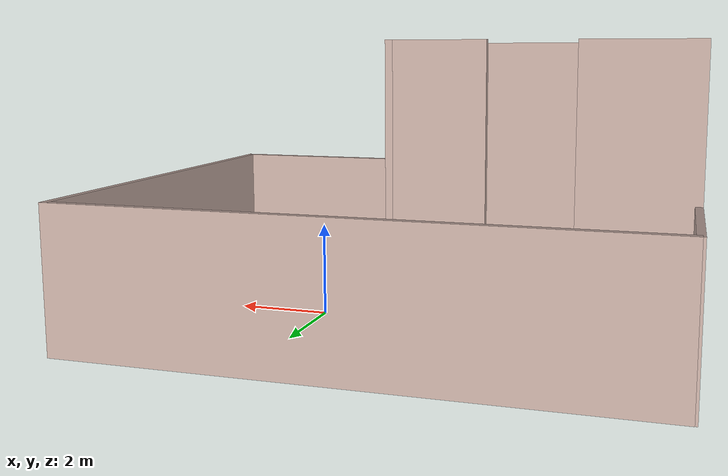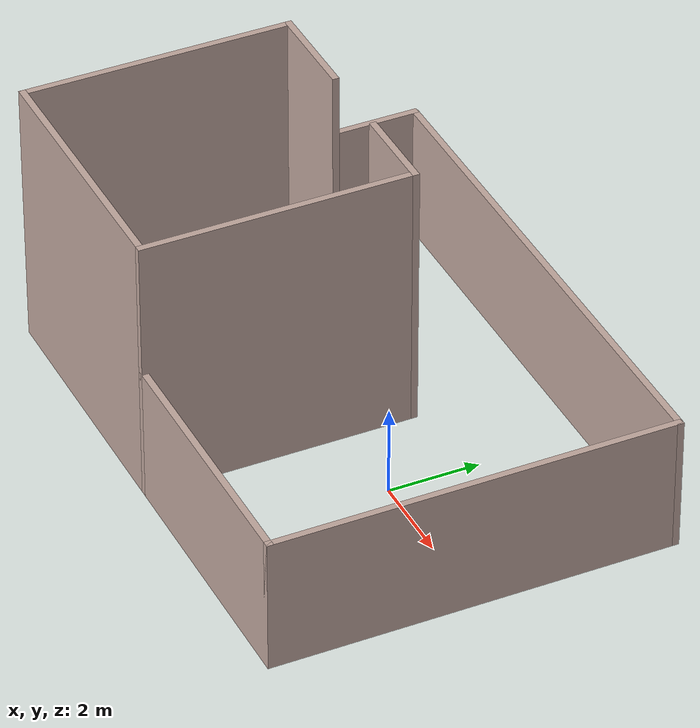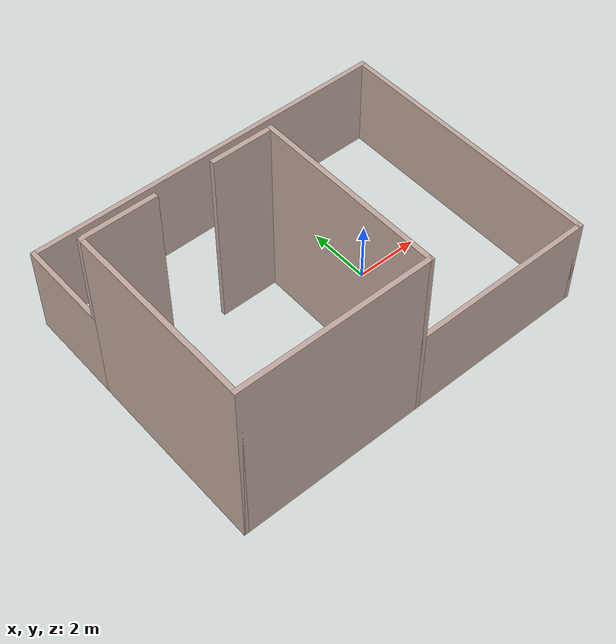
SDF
<?xml version='1.0'?>
<sdf version='1.6'>
  <model name='gardener_house'>
    <pose frame=''>-2 0 0 0 -0 0</pose>
    <link name='Wall_23'>
      <collision name='Wall_23_Collision'>
        <geometry>
          <box>
            <size>3 0.15 3</size>
          </box>
        </geometry>
        <pose frame=''>0 0 1.5 0 -0 0</pose>
      </collision>
      <visual name='Wall_23_Visual'>
        <pose frame=''>0 0 1.5 0 -0 0</pose>
        <geometry>
          <box>
            <size>3 0.15 3</size>
          </box>
        </geometry>
        <material>
          <script>
            <uri>file://media/materials/scripts/gazebo.material</uri>
            <name>Gazebo/Grey</name>
          </script>
          <ambient>0.760784 0.662745 0.627451 1</ambient>
        </material>
        <meta>
          <layer>0</layer>
        </meta>
      </visual>
      <pose frame=''>-5.85 2.92 0 0 -0 -1.5708</pose>
    </link>
    <link name='Wall_24'>
      <collision name='Wall_24_Collision'>
        <geometry>
          <box>
            <size>6 0.15 6</size>
          </box>
        </geometry>
        <pose frame=''>0 0 3 0 -0 0</pose>
      </collision>
      <visual name='Wall_24_Visual'>
        <pose frame=''>0 0 3 0 -0 0</pose>
        <geometry>
          <box>
            <size>6 0.15 6</size>
          </box>
        </geometry>
        <material>
          <script>
            <uri>file://media/materials/scripts/gazebo.material</uri>
            <name>Gazebo/Grey</name>
          </script>
          <ambient>0.760784 0.662745 0.627451 1</ambient>
        </material>
        <meta>
          <layer>0</layer>
        </meta>
      </visual>
      <pose frame=''>-5.85 -1.43 0 0 -0 -1.5708</pose>
    </link>
    <link name='Wall_25'>
      <collision name='Wall_25_Collision'>
        <geometry>
          <box>
            <size>6 0.15 6</size>
          </box>
        </geometry>
        <pose frame=''>0 0 3 0 -0 0</pose>
      </collision>
      <visual name='Wall_25_Visual'>
        <pose frame=''>0 0 3 0 -0 0</pose>
        <geometry>
          <box>
            <size>6 0.15 6</size>
          </box>
        </geometry>
        <material>
          <script>
            <uri>file://media/materials/scripts/gazebo.material</uri>
            <name>Gazebo/Grey</name>
          </script>
          <ambient>0.760784 0.662745 0.627451 1</ambient>
        </material>
        <meta>
          <layer>0</layer>
        </meta>
      </visual>
      <pose frame=''>-2.925 -4.355 0 0 -0 0</pose>
    </link>
    <link name='Wall_26'>
      <collision name='Wall_26_Collision'>
        <geometry>
          <box>
            <size>6 0.15 3</size>
          </box>
        </geometry>
        <pose frame=''>0 0 1.5 0 -0 0</pose>
      </collision>
      <visual name='Wall_26_Visual'>
        <pose frame=''>0 0 1.5 0 -0 0</pose>
        <geometry>
          <box>
            <size>6 0.15 3</size>
          </box>
        </geometry>
        <material>
          <script>
            <uri>file://media/materials/scripts/gazebo.material</uri>
            <name>Gazebo/Grey</name>
          </script>
          <ambient>0.760784 0.662745 0.627451 1</ambient>
        </material>
        <meta>
          <layer>0</layer>
        </meta>
      </visual>
      <pose frame=''>2.925 -4.355 0 0 -0 0</pose>
    </link>
    <link name='Wall_27'>
      <collision name='Wall_27_Collision'>
        <geometry>
          <box>
            <size>8.84 0.15 3</size>
          </box>
        </geometry>
        <pose frame=''>0 0 1.5 0 -0 0</pose>
      </collision>
      <visual name='Wall_27_Visual'>
        <pose frame=''>0 0 1.5 0 -0 0</pose>
        <geometry>
          <box>
            <size>8.84 0.15 3</size>
          </box>
        </geometry>
        <material>
          <script>
            <uri>file://media/materials/scripts/gazebo.material</uri>
            <name>Gazebo/Grey</name>
          </script>
          <ambient>0.760784 0.662745 0.627451 1</ambient>
        </material>
        <meta>
          <layer>0</layer>
        </meta>
      </visual>
      <pose frame=''>5.85 -0.01 0 0 -0 1.5708</pose>
    </link>
    <link name='Wall_28'>
      <collision name='Wall_28_Collision'>
        <geometry>
          <box>
            <size>11.8 0.15 3</size>
          </box>
        </geometry>
        <pose frame=''>0 0 1.5 0 -0 0</pose>
      </collision>
      <visual name='Wall_28_Visual'>
        <pose frame=''>0 0 1.5 0 -0 0</pose>
        <geometry>
          <box>
            <size>11.8 0.15 3</size>
          </box>
        </geometry>
        <material>
          <script>
            <uri>file://media/materials/scripts/gazebo.material</uri>
            <name>Gazebo/Grey</name>
          </script>
          <ambient>0.760784 0.662745 0.627451 1</ambient>
        </material>
        <meta>
          <layer>0</layer>
        </meta>
      </visual>
      <pose frame=''>0.025 4.355 0 0 -0 3.14159</pose>
    </link>
    <link name='Wall_32'>
      <collision name='Wall_32_Collision'>
        <geometry>
          <box>
            <size>6 0.15 6</size>
          </box>
        </geometry>
        <pose frame=''>0 0 3 0 -0 0</pose>
      </collision>
      <visual name='Wall_32_Visual'>
        <pose frame=''>0 0 3 0 -0 0</pose>
        <geometry>
          <box>
            <size>6 0.15 6</size>
          </box>
        </geometry>
        <material>
          <script>
            <uri>file://media/materials/scripts/gazebo.material</uri>
            <name>Gazebo/Grey</name>
          </script>
          <ambient>0.760784 0.662745 0.627451 1</ambient>
        </material>
        <meta>
          <layer>0</layer>
        </meta>
      </visual>
      <pose frame=''>0 -1.43 0 0 -0 1.5708</pose>
    </link>
    <link name='Wall_33'>
      <collision name='Wall_33_Collision'>
        <geometry>
          <box>
            <size>2 0.15 6</size>
          </box>
        </geometry>
        <pose frame=''>0 0 3 0 -0 0</pose>
      </collision>
      <visual name='Wall_33_Visual'>
        <pose frame=''>0 0 3 0 -0 0</pose>
        <geometry>
          <box>
            <size>2 0.15 6</size>
          </box>
        </geometry>
        <material>
          <script>
            <uri>file://media/materials/scripts/gazebo.material</uri>
            <name>Gazebo/Grey</name>
          </script>
          <ambient>0.760784 0.662745 0.627451 1</ambient>
        </material>
        <meta>
          <layer>0</layer>
        </meta>
      </visual>
      <pose frame=''>-0.925 1.495 0 0 -0 3.14159</pose>
    </link>
    <link name='Wall_35'>
      <collision name='Wall_35_Collision'>
        <geometry>
          <box>
            <size>2.3 0.15 6</size>
          </box>
        </geometry>
        <pose frame=''>0 0 3 0 -0 0</pose>
      </collision>
      <visual name='Wall_35_Visual'>
        <pose frame=''>0 0 3 0 -0 0</pose>
        <geometry>
          <box>
            <size>2.3 0.15 6</size>
          </box>
        </geometry>
        <material>
          <script>
            <uri>file://media/materials/scripts/gazebo.material</uri>
            <name>Gazebo/Grey</name>
          </script>
          <ambient>0.760784 0.662745 0.627451 1</ambient>
        </material>
        <meta>
          <layer>0</layer>
        </meta>
      </visual>
      <pose frame=''>-4.775 1.495 0 0 -0 3.14159</pose>
    </link>
    <static>1</static>
  </model>
</sdf>
